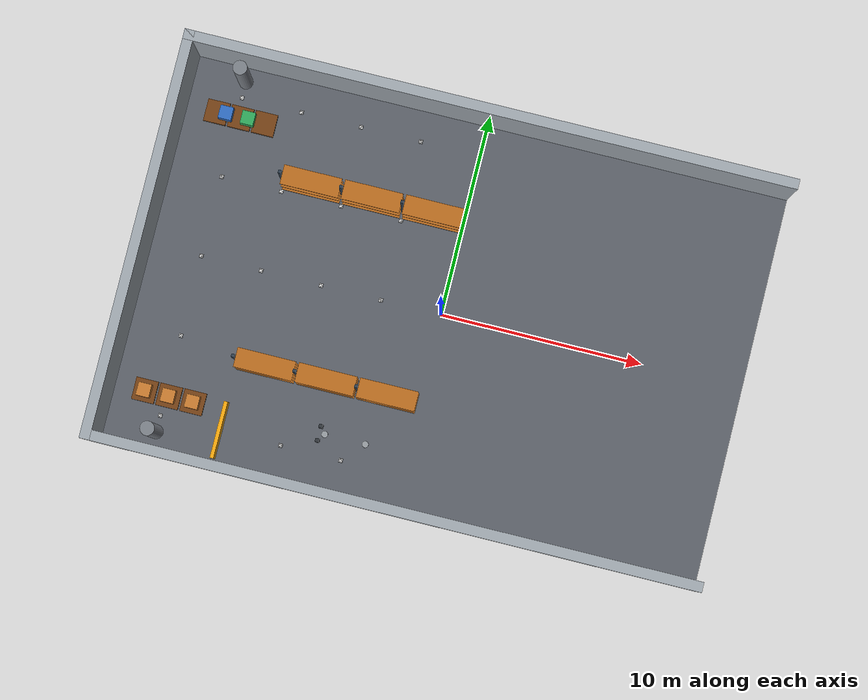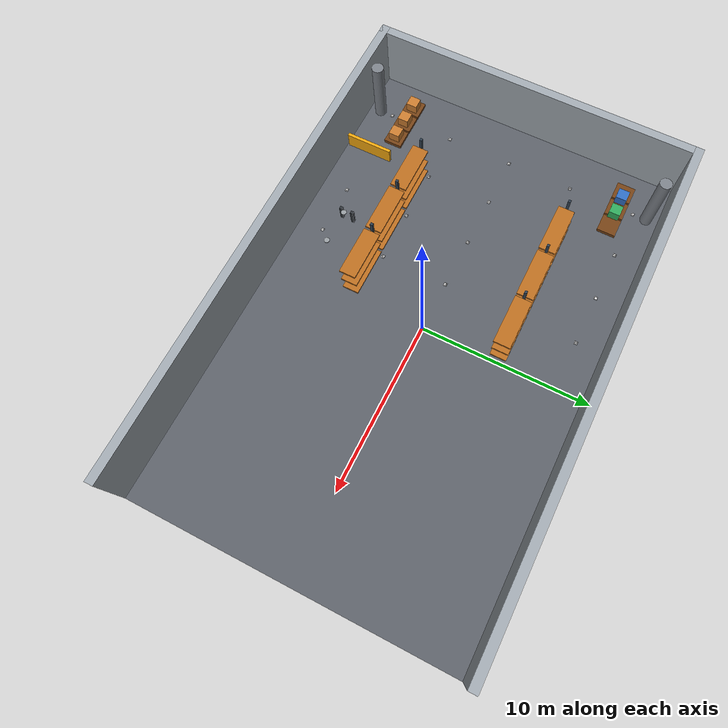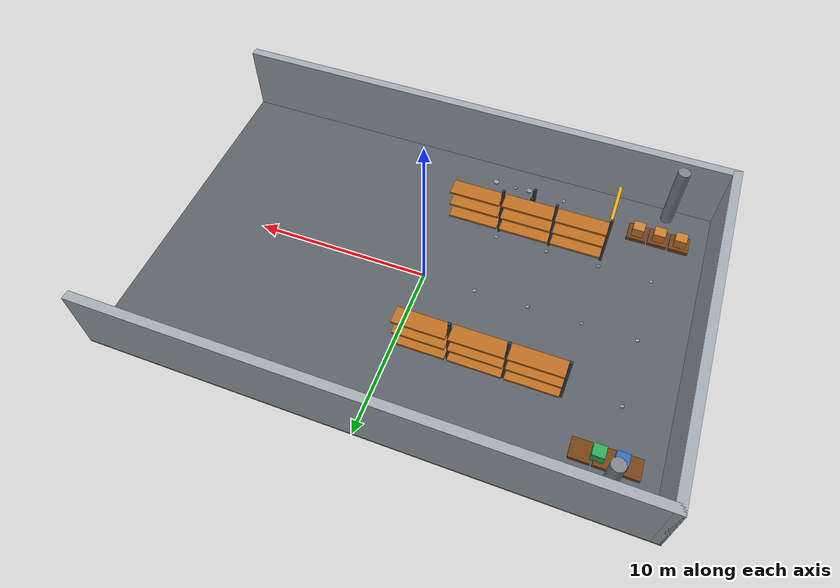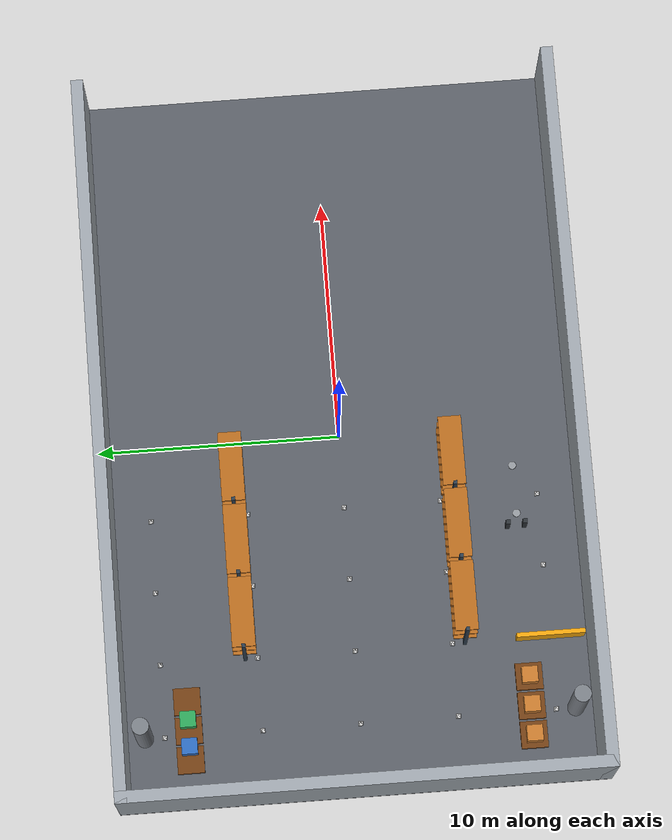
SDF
<sdf version="1.6">
 <world name="warehouse">
  <include><uri>model://sun</uri></include>
  <model name="floor">
   <static>true</static>
   <pose>0 0 -0.05 0 0 0</pose>
   <link name="link">
    <visual name="visual">
     <geometry><box><size>30 20 0.1</size></box></geometry>
     <material>
      <ambient>0.35 0.37 0.40 1</ambient>
      <diffuse>0.35 0.37 0.40 1</diffuse>
      <specular>0.1 0.1 0.1 1</specular>
     </material>
    </visual>
    <collision name="collision">
     <geometry><box><size>30 20 0.1</size></box></geometry>
     <surface>
      <friction><ode><mu>2.0</mu><mu2>2.0</mu2></ode></friction>
      <contact><ode><kp>1000000</kp><kd>100</kd><max_vel>0.05</max_vel><min_depth>0</min_depth></ode></contact>
     </surface>
    </collision>
   </link>
  </model>
  <model name="north_wall">
   <static>true</static>
   <pose>0 9.75 2 0 0 0</pose>
   <link name="link">
    <visual name="visual">
     <geometry><box><size>30 0.5 4</size></box></geometry>
     <material>
      <ambient>0.62 0.65 0.68 1</ambient>
      <diffuse>0.62 0.65 0.68 1</diffuse>
      <specular>0.1 0.1 0.1 1</specular>
     </material>
    </visual>
    <collision name="collision">
     <geometry><box><size>30 0.5 4</size></box></geometry>
     <surface>
      <friction><ode><mu>0.8</mu><mu2>0.8</mu2></ode></friction>
      <contact><ode><kp>1000000</kp><kd>100</kd><max_vel>0.05</max_vel><min_depth>0</min_depth></ode></contact>
     </surface>
    </collision>
   </link>
  </model>
  <model name="south_wall">
   <static>true</static>
   <pose>0 -9.75 2 0 0 0</pose>
   <link name="link">
    <visual name="visual">
     <geometry><box><size>30 0.5 4</size></box></geometry>
     <material>
      <ambient>0.62 0.65 0.68 1</ambient>
      <diffuse>0.62 0.65 0.68 1</diffuse>
      <specular>0.1 0.1 0.1 1</specular>
     </material>
    </visual>
    <collision name="collision">
     <geometry><box><size>30 0.5 4</size></box></geometry>
     <surface>
      <friction><ode><mu>0.8</mu><mu2>0.8</mu2></ode></friction>
      <contact><ode><kp>1000000</kp><kd>100</kd><max_vel>0.05</max_vel><min_depth>0</min_depth></ode></contact>
     </surface>
    </collision>
   </link>
  </model>
  <model name="west_wall">
   <static>true</static>
   <pose>-14.75 0 2 0 0 0</pose>
   <link name="link">
    <visual name="visual">
     <geometry><box><size>0.5 20 4</size></box></geometry>
     <material>
      <ambient>0.62 0.65 0.68 1</ambient>
      <diffuse>0.62 0.65 0.68 1</diffuse>
      <specular>0.1 0.1 0.1 1</specular>
     </material>
    </visual>
    <collision name="collision">
     <geometry><box><size>0.5 20 4</size></box></geometry>
     <surface>
      <friction><ode><mu>0.8</mu><mu2>0.8</mu2></ode></friction>
      <contact><ode><kp>1000000</kp><kd>100</kd><max_vel>0.05</max_vel><min_depth>0</min_depth></ode></contact>
     </surface>
    </collision>
   </link>
  </model>
  <model name="pillar_nw">
   <static>true</static>
   <pose>-12 8.8 2 0 0 0</pose>
   <link name="link">
    <visual name="visual">
     <geometry><cylinder><radius>0.35</radius><length>4</length></cylinder></geometry>
     <material>
      <ambient>0.48 0.50 0.53 1</ambient>
      <diffuse>0.48 0.50 0.53 1</diffuse>
      <specular>0.1 0.1 0.1 1</specular>
     </material>
    </visual>
    <collision name="collision">
     <geometry><cylinder><radius>0.35</radius><length>4</length></cylinder></geometry>
     <surface>
      <friction><ode><mu>0.8</mu><mu2>0.8</mu2></ode></friction>
      <contact><ode><kp>1000000</kp><kd>100</kd><max_vel>0.05</max_vel><min_depth>0</min_depth></ode></contact>
     </surface>
    </collision>
   </link>
  </model>
  <model name="pillar_sw">
   <static>true</static>
   <pose>-12 -8.8 2 0 0 0</pose>
   <link name="link">
    <visual name="visual">
     <geometry><cylinder><radius>0.35</radius><length>4</length></cylinder></geometry>
     <material>
      <ambient>0.48 0.50 0.53 1</ambient>
      <diffuse>0.48 0.50 0.53 1</diffuse>
      <specular>0.1 0.1 0.1 1</specular>
     </material>
    </visual>
    <collision name="collision">
     <geometry><cylinder><radius>0.35</radius><length>4</length></cylinder></geometry>
     <surface>
      <friction><ode><mu>0.8</mu><mu2>0.8</mu2></ode></friction>
      <contact><ode><kp>1000000</kp><kd>100</kd><max_vel>0.05</max_vel><min_depth>0</min_depth></ode></contact>
     </surface>
    </collision>
   </link>
  </model>
  <model name="rack_south_post_m9">
   <static>true</static>
   <pose>-9 -4.5 1.75 0 0 0</pose>
   <link name="link">
    <visual name="visual">
     <geometry><box><size>0.15 0.15 3.5</size></box></geometry>
     <material>
      <ambient>0.18 0.24 0.30 1</ambient>
      <diffuse>0.18 0.24 0.30 1</diffuse>
      <specular>0.1 0.1 0.1 1</specular>
     </material>
    </visual>
    <collision name="collision">
     <geometry><box><size>0.15 0.15 3.5</size></box></geometry>
     <surface>
      <friction><ode><mu>0.8</mu><mu2>0.8</mu2></ode></friction>
      <contact><ode><kp>1000000</kp><kd>100</kd><max_vel>0.05</max_vel><min_depth>0</min_depth></ode></contact>
     </surface>
    </collision>
   </link>
  </model>
  <model name="rack_south_post_m6">
   <static>true</static>
   <pose>-6 -4.5 1.75 0 0 0</pose>
   <link name="link">
    <visual name="visual">
     <geometry><box><size>0.15 0.15 3.5</size></box></geometry>
     <material>
      <ambient>0.18 0.24 0.30 1</ambient>
      <diffuse>0.18 0.24 0.30 1</diffuse>
      <specular>0.1 0.1 0.1 1</specular>
     </material>
    </visual>
    <collision name="collision">
     <geometry><box><size>0.15 0.15 3.5</size></box></geometry>
     <surface>
      <friction><ode><mu>0.8</mu><mu2>0.8</mu2></ode></friction>
      <contact><ode><kp>1000000</kp><kd>100</kd><max_vel>0.05</max_vel><min_depth>0</min_depth></ode></contact>
     </surface>
    </collision>
   </link>
  </model>
  <model name="rack_south_post_m3">
   <static>true</static>
   <pose>-3 -4.5 1.75 0 0 0</pose>
   <link name="link">
    <visual name="visual">
     <geometry><box><size>0.15 0.15 3.5</size></box></geometry>
     <material>
      <ambient>0.18 0.24 0.30 1</ambient>
      <diffuse>0.18 0.24 0.30 1</diffuse>
      <specular>0.1 0.1 0.1 1</specular>
     </material>
    </visual>
    <collision name="collision">
     <geometry><box><size>0.15 0.15 3.5</size></box></geometry>
     <surface>
      <friction><ode><mu>0.8</mu><mu2>0.8</mu2></ode></friction>
      <contact><ode><kp>1000000</kp><kd>100</kd><max_vel>0.05</max_vel><min_depth>0</min_depth></ode></contact>
     </surface>
    </collision>
   </link>
  </model>
  <model name="rack_south_shelf_m7.5_low">
   <static>true</static>
   <pose>-7.5 -4.5 0.7 0 0 0</pose>
   <link name="link">
    <visual name="visual">
     <geometry><box><size>2.85 0.95 0.12</size></box></geometry>
     <material>
      <ambient>0.72 0.42 0.12 1</ambient>
      <diffuse>0.72 0.42 0.12 1</diffuse>
      <specular>0.1 0.1 0.1 1</specular>
     </material>
    </visual>
    <collision name="collision">
     <geometry><box><size>2.85 0.95 0.12</size></box></geometry>
     <surface>
      <friction><ode><mu>0.8</mu><mu2>0.8</mu2></ode></friction>
      <contact><ode><kp>1000000</kp><kd>100</kd><max_vel>0.05</max_vel><min_depth>0</min_depth></ode></contact>
     </surface>
    </collision>
   </link>
  </model>
  <model name="rack_south_shelf_m7.5_mid">
   <static>true</static>
   <pose>-7.5 -4.5 1.7 0 0 0</pose>
   <link name="link">
    <visual name="visual">
     <geometry><box><size>2.85 0.95 0.12</size></box></geometry>
     <material>
      <ambient>0.72 0.42 0.12 1</ambient>
      <diffuse>0.72 0.42 0.12 1</diffuse>
      <specular>0.1 0.1 0.1 1</specular>
     </material>
    </visual>
    <collision name="collision">
     <geometry><box><size>2.85 0.95 0.12</size></box></geometry>
     <surface>
      <friction><ode><mu>0.8</mu><mu2>0.8</mu2></ode></friction>
      <contact><ode><kp>1000000</kp><kd>100</kd><max_vel>0.05</max_vel><min_depth>0</min_depth></ode></contact>
     </surface>
    </collision>
   </link>
  </model>
  <model name="rack_south_shelf_m7.5_high">
   <static>true</static>
   <pose>-7.5 -4.5 2.7 0 0 0</pose>
   <link name="link">
    <visual name="visual">
     <geometry><box><size>2.85 0.95 0.12</size></box></geometry>
     <material>
      <ambient>0.72 0.42 0.12 1</ambient>
      <diffuse>0.72 0.42 0.12 1</diffuse>
      <specular>0.1 0.1 0.1 1</specular>
     </material>
    </visual>
    <collision name="collision">
     <geometry><box><size>2.85 0.95 0.12</size></box></geometry>
     <surface>
      <friction><ode><mu>0.8</mu><mu2>0.8</mu2></ode></friction>
      <contact><ode><kp>1000000</kp><kd>100</kd><max_vel>0.05</max_vel><min_depth>0</min_depth></ode></contact>
     </surface>
    </collision>
   </link>
  </model>
  <model name="rack_south_shelf_m4.5_low">
   <static>true</static>
   <pose>-4.5 -4.5 0.7 0 0 0</pose>
   <link name="link">
    <visual name="visual">
     <geometry><box><size>2.85 0.95 0.12</size></box></geometry>
     <material>
      <ambient>0.72 0.42 0.12 1</ambient>
      <diffuse>0.72 0.42 0.12 1</diffuse>
      <specular>0.1 0.1 0.1 1</specular>
     </material>
    </visual>
    <collision name="collision">
     <geometry><box><size>2.85 0.95 0.12</size></box></geometry>
     <surface>
      <friction><ode><mu>0.8</mu><mu2>0.8</mu2></ode></friction>
      <contact><ode><kp>1000000</kp><kd>100</kd><max_vel>0.05</max_vel><min_depth>0</min_depth></ode></contact>
     </surface>
    </collision>
   </link>
  </model>
  <model name="rack_south_shelf_m4.5_mid">
   <static>true</static>
   <pose>-4.5 -4.5 1.7 0 0 0</pose>
   <link name="link">
    <visual name="visual">
     <geometry><box><size>2.85 0.95 0.12</size></box></geometry>
     <material>
      <ambient>0.72 0.42 0.12 1</ambient>
      <diffuse>0.72 0.42 0.12 1</diffuse>
      <specular>0.1 0.1 0.1 1</specular>
     </material>
    </visual>
    <collision name="collision">
     <geometry><box><size>2.85 0.95 0.12</size></box></geometry>
     <surface>
      <friction><ode><mu>0.8</mu><mu2>0.8</mu2></ode></friction>
      <contact><ode><kp>1000000</kp><kd>100</kd><max_vel>0.05</max_vel><min_depth>0</min_depth></ode></contact>
     </surface>
    </collision>
   </link>
  </model>
  <model name="rack_south_shelf_m4.5_high">
   <static>true</static>
   <pose>-4.5 -4.5 2.7 0 0 0</pose>
   <link name="link">
    <visual name="visual">
     <geometry><box><size>2.85 0.95 0.12</size></box></geometry>
     <material>
      <ambient>0.72 0.42 0.12 1</ambient>
      <diffuse>0.72 0.42 0.12 1</diffuse>
      <specular>0.1 0.1 0.1 1</specular>
     </material>
    </visual>
    <collision name="collision">
     <geometry><box><size>2.85 0.95 0.12</size></box></geometry>
     <surface>
      <friction><ode><mu>0.8</mu><mu2>0.8</mu2></ode></friction>
      <contact><ode><kp>1000000</kp><kd>100</kd><max_vel>0.05</max_vel><min_depth>0</min_depth></ode></contact>
     </surface>
    </collision>
   </link>
  </model>
  <model name="rack_south_shelf_m1.5_low">
   <static>true</static>
   <pose>-1.5 -4.5 0.7 0 0 0</pose>
   <link name="link">
    <visual name="visual">
     <geometry><box><size>2.85 0.95 0.12</size></box></geometry>
     <material>
      <ambient>0.72 0.42 0.12 1</ambient>
      <diffuse>0.72 0.42 0.12 1</diffuse>
      <specular>0.1 0.1 0.1 1</specular>
     </material>
    </visual>
    <collision name="collision">
     <geometry><box><size>2.85 0.95 0.12</size></box></geometry>
     <surface>
      <friction><ode><mu>0.8</mu><mu2>0.8</mu2></ode></friction>
      <contact><ode><kp>1000000</kp><kd>100</kd><max_vel>0.05</max_vel><min_depth>0</min_depth></ode></contact>
     </surface>
    </collision>
   </link>
  </model>
  <model name="rack_south_shelf_m1.5_mid">
   <static>true</static>
   <pose>-1.5 -4.5 1.7 0 0 0</pose>
   <link name="link">
    <visual name="visual">
     <geometry><box><size>2.85 0.95 0.12</size></box></geometry>
     <material>
      <ambient>0.72 0.42 0.12 1</ambient>
      <diffuse>0.72 0.42 0.12 1</diffuse>
      <specular>0.1 0.1 0.1 1</specular>
     </material>
    </visual>
    <collision name="collision">
     <geometry><box><size>2.85 0.95 0.12</size></box></geometry>
     <surface>
      <friction><ode><mu>0.8</mu><mu2>0.8</mu2></ode></friction>
      <contact><ode><kp>1000000</kp><kd>100</kd><max_vel>0.05</max_vel><min_depth>0</min_depth></ode></contact>
     </surface>
    </collision>
   </link>
  </model>
  <model name="rack_south_shelf_m1.5_high">
   <static>true</static>
   <pose>-1.5 -4.5 2.7 0 0 0</pose>
   <link name="link">
    <visual name="visual">
     <geometry><box><size>2.85 0.95 0.12</size></box></geometry>
     <material>
      <ambient>0.72 0.42 0.12 1</ambient>
      <diffuse>0.72 0.42 0.12 1</diffuse>
      <specular>0.1 0.1 0.1 1</specular>
     </material>
    </visual>
    <collision name="collision">
     <geometry><box><size>2.85 0.95 0.12</size></box></geometry>
     <surface>
      <friction><ode><mu>0.8</mu><mu2>0.8</mu2></ode></friction>
      <contact><ode><kp>1000000</kp><kd>100</kd><max_vel>0.05</max_vel><min_depth>0</min_depth></ode></contact>
     </surface>
    </collision>
   </link>
  </model>
  <model name="rack_north_post_m9">
   <static>true</static>
   <pose>-9 4.5 1.75 0 0 0</pose>
   <link name="link">
    <visual name="visual">
     <geometry><box><size>0.15 0.15 3.5</size></box></geometry>
     <material>
      <ambient>0.18 0.24 0.30 1</ambient>
      <diffuse>0.18 0.24 0.30 1</diffuse>
      <specular>0.1 0.1 0.1 1</specular>
     </material>
    </visual>
    <collision name="collision">
     <geometry><box><size>0.15 0.15 3.5</size></box></geometry>
     <surface>
      <friction><ode><mu>0.8</mu><mu2>0.8</mu2></ode></friction>
      <contact><ode><kp>1000000</kp><kd>100</kd><max_vel>0.05</max_vel><min_depth>0</min_depth></ode></contact>
     </surface>
    </collision>
   </link>
  </model>
  <model name="rack_north_post_m6">
   <static>true</static>
   <pose>-6 4.5 1.75 0 0 0</pose>
   <link name="link">
    <visual name="visual">
     <geometry><box><size>0.15 0.15 3.5</size></box></geometry>
     <material>
      <ambient>0.18 0.24 0.30 1</ambient>
      <diffuse>0.18 0.24 0.30 1</diffuse>
      <specular>0.1 0.1 0.1 1</specular>
     </material>
    </visual>
    <collision name="collision">
     <geometry><box><size>0.15 0.15 3.5</size></box></geometry>
     <surface>
      <friction><ode><mu>0.8</mu><mu2>0.8</mu2></ode></friction>
      <contact><ode><kp>1000000</kp><kd>100</kd><max_vel>0.05</max_vel><min_depth>0</min_depth></ode></contact>
     </surface>
    </collision>
   </link>
  </model>
  <model name="rack_north_post_m3">
   <static>true</static>
   <pose>-3 4.5 1.75 0 0 0</pose>
   <link name="link">
    <visual name="visual">
     <geometry><box><size>0.15 0.15 3.5</size></box></geometry>
     <material>
      <ambient>0.18 0.24 0.30 1</ambient>
      <diffuse>0.18 0.24 0.30 1</diffuse>
      <specular>0.1 0.1 0.1 1</specular>
     </material>
    </visual>
    <collision name="collision">
     <geometry><box><size>0.15 0.15 3.5</size></box></geometry>
     <surface>
      <friction><ode><mu>0.8</mu><mu2>0.8</mu2></ode></friction>
      <contact><ode><kp>1000000</kp><kd>100</kd><max_vel>0.05</max_vel><min_depth>0</min_depth></ode></contact>
     </surface>
    </collision>
   </link>
  </model>
  <model name="rack_north_shelf_m7.5_low">
   <static>true</static>
   <pose>-7.5 4.5 0.7 0 0 0</pose>
   <link name="link">
    <visual name="visual">
     <geometry><box><size>2.85 0.95 0.12</size></box></geometry>
     <material>
      <ambient>0.72 0.42 0.12 1</ambient>
      <diffuse>0.72 0.42 0.12 1</diffuse>
      <specular>0.1 0.1 0.1 1</specular>
     </material>
    </visual>
    <collision name="collision">
     <geometry><box><size>2.85 0.95 0.12</size></box></geometry>
     <surface>
      <friction><ode><mu>0.8</mu><mu2>0.8</mu2></ode></friction>
      <contact><ode><kp>1000000</kp><kd>100</kd><max_vel>0.05</max_vel><min_depth>0</min_depth></ode></contact>
     </surface>
    </collision>
   </link>
  </model>
  <model name="rack_north_shelf_m7.5_mid">
   <static>true</static>
   <pose>-7.5 4.5 1.7 0 0 0</pose>
   <link name="link">
    <visual name="visual">
     <geometry><box><size>2.85 0.95 0.12</size></box></geometry>
     <material>
      <ambient>0.72 0.42 0.12 1</ambient>
      <diffuse>0.72 0.42 0.12 1</diffuse>
      <specular>0.1 0.1 0.1 1</specular>
     </material>
    </visual>
    <collision name="collision">
     <geometry><box><size>2.85 0.95 0.12</size></box></geometry>
     <surface>
      <friction><ode><mu>0.8</mu><mu2>0.8</mu2></ode></friction>
      <contact><ode><kp>1000000</kp><kd>100</kd><max_vel>0.05</max_vel><min_depth>0</min_depth></ode></contact>
     </surface>
    </collision>
   </link>
  </model>
  <model name="rack_north_shelf_m7.5_high">
   <static>true</static>
   <pose>-7.5 4.5 2.7 0 0 0</pose>
   <link name="link">
    <visual name="visual">
     <geometry><box><size>2.85 0.95 0.12</size></box></geometry>
     <material>
      <ambient>0.72 0.42 0.12 1</ambient>
      <diffuse>0.72 0.42 0.12 1</diffuse>
      <specular>0.1 0.1 0.1 1</specular>
     </material>
    </visual>
    <collision name="collision">
     <geometry><box><size>2.85 0.95 0.12</size></box></geometry>
     <surface>
      <friction><ode><mu>0.8</mu><mu2>0.8</mu2></ode></friction>
      <contact><ode><kp>1000000</kp><kd>100</kd><max_vel>0.05</max_vel><min_depth>0</min_depth></ode></contact>
     </surface>
    </collision>
   </link>
  </model>
  <model name="rack_north_shelf_m4.5_low">
   <static>true</static>
   <pose>-4.5 4.5 0.7 0 0 0</pose>
   <link name="link">
    <visual name="visual">
     <geometry><box><size>2.85 0.95 0.12</size></box></geometry>
     <material>
      <ambient>0.72 0.42 0.12 1</ambient>
      <diffuse>0.72 0.42 0.12 1</diffuse>
      <specular>0.1 0.1 0.1 1</specular>
     </material>
    </visual>
    <collision name="collision">
     <geometry><box><size>2.85 0.95 0.12</size></box></geometry>
     <surface>
      <friction><ode><mu>0.8</mu><mu2>0.8</mu2></ode></friction>
      <contact><ode><kp>1000000</kp><kd>100</kd><max_vel>0.05</max_vel><min_depth>0</min_depth></ode></contact>
     </surface>
    </collision>
   </link>
  </model>
  <model name="rack_north_shelf_m4.5_mid">
   <static>true</static>
   <pose>-4.5 4.5 1.7 0 0 0</pose>
   <link name="link">
    <visual name="visual">
     <geometry><box><size>2.85 0.95 0.12</size></box></geometry>
     <material>
      <ambient>0.72 0.42 0.12 1</ambient>
      <diffuse>0.72 0.42 0.12 1</diffuse>
      <specular>0.1 0.1 0.1 1</specular>
     </material>
    </visual>
    <collision name="collision">
     <geometry><box><size>2.85 0.95 0.12</size></box></geometry>
     <surface>
      <friction><ode><mu>0.8</mu><mu2>0.8</mu2></ode></friction>
      <contact><ode><kp>1000000</kp><kd>100</kd><max_vel>0.05</max_vel><min_depth>0</min_depth></ode></contact>
     </surface>
    </collision>
   </link>
  </model>
  <model name="rack_north_shelf_m4.5_high">
   <static>true</static>
   <pose>-4.5 4.5 2.7 0 0 0</pose>
   <link name="link">
    <visual name="visual">
     <geometry><box><size>2.85 0.95 0.12</size></box></geometry>
     <material>
      <ambient>0.72 0.42 0.12 1</ambient>
      <diffuse>0.72 0.42 0.12 1</diffuse>
      <specular>0.1 0.1 0.1 1</specular>
     </material>
    </visual>
    <collision name="collision">
     <geometry><box><size>2.85 0.95 0.12</size></box></geometry>
     <surface>
      <friction><ode><mu>0.8</mu><mu2>0.8</mu2></ode></friction>
      <contact><ode><kp>1000000</kp><kd>100</kd><max_vel>0.05</max_vel><min_depth>0</min_depth></ode></contact>
     </surface>
    </collision>
   </link>
  </model>
  <model name="rack_north_shelf_m1.5_low">
   <static>true</static>
   <pose>-1.5 4.5 0.7 0 0 0</pose>
   <link name="link">
    <visual name="visual">
     <geometry><box><size>2.85 0.95 0.12</size></box></geometry>
     <material>
      <ambient>0.72 0.42 0.12 1</ambient>
      <diffuse>0.72 0.42 0.12 1</diffuse>
      <specular>0.1 0.1 0.1 1</specular>
     </material>
    </visual>
    <collision name="collision">
     <geometry><box><size>2.85 0.95 0.12</size></box></geometry>
     <surface>
      <friction><ode><mu>0.8</mu><mu2>0.8</mu2></ode></friction>
      <contact><ode><kp>1000000</kp><kd>100</kd><max_vel>0.05</max_vel><min_depth>0</min_depth></ode></contact>
     </surface>
    </collision>
   </link>
  </model>
  <model name="rack_north_shelf_m1.5_mid">
   <static>true</static>
   <pose>-1.5 4.5 1.7 0 0 0</pose>
   <link name="link">
    <visual name="visual">
     <geometry><box><size>2.85 0.95 0.12</size></box></geometry>
     <material>
      <ambient>0.72 0.42 0.12 1</ambient>
      <diffuse>0.72 0.42 0.12 1</diffuse>
      <specular>0.1 0.1 0.1 1</specular>
     </material>
    </visual>
    <collision name="collision">
     <geometry><box><size>2.85 0.95 0.12</size></box></geometry>
     <surface>
      <friction><ode><mu>0.8</mu><mu2>0.8</mu2></ode></friction>
      <contact><ode><kp>1000000</kp><kd>100</kd><max_vel>0.05</max_vel><min_depth>0</min_depth></ode></contact>
     </surface>
    </collision>
   </link>
  </model>
  <model name="rack_north_shelf_m1.5_high">
   <static>true</static>
   <pose>-1.5 4.5 2.7 0 0 0</pose>
   <link name="link">
    <visual name="visual">
     <geometry><box><size>2.85 0.95 0.12</size></box></geometry>
     <material>
      <ambient>0.72 0.42 0.12 1</ambient>
      <diffuse>0.72 0.42 0.12 1</diffuse>
      <specular>0.1 0.1 0.1 1</specular>
     </material>
    </visual>
    <collision name="collision">
     <geometry><box><size>2.85 0.95 0.12</size></box></geometry>
     <surface>
      <friction><ode><mu>0.8</mu><mu2>0.8</mu2></ode></friction>
      <contact><ode><kp>1000000</kp><kd>100</kd><max_vel>0.05</max_vel><min_depth>0</min_depth></ode></contact>
     </surface>
    </collision>
   </link>
  </model>
  <model name="inbound_pallet_-13">
   <static>true</static>
   <pose>-13 -7 0.11 0 0 0</pose>
   <link name="link">
    <visual name="visual">
     <geometry><box><size>1.1 1.1 0.22</size></box></geometry>
     <material>
      <ambient>0.45 0.25 0.08 1</ambient>
      <diffuse>0.45 0.25 0.08 1</diffuse>
      <specular>0.1 0.1 0.1 1</specular>
     </material>
    </visual>
    <collision name="collision">
     <geometry><box><size>1.1 1.1 0.22</size></box></geometry>
     <surface>
      <friction><ode><mu>0.7</mu><mu2>0.7</mu2></ode></friction>
      <contact><ode><kp>1000000</kp><kd>100</kd><max_vel>0.05</max_vel><min_depth>0</min_depth></ode></contact>
     </surface>
    </collision>
   </link>
  </model>
  <model name="inbound_pallet_-11.8">
   <static>true</static>
   <pose>-11.8 -7 0.11 0 0 0</pose>
   <link name="link">
    <visual name="visual">
     <geometry><box><size>1.1 1.1 0.22</size></box></geometry>
     <material>
      <ambient>0.45 0.25 0.08 1</ambient>
      <diffuse>0.45 0.25 0.08 1</diffuse>
      <specular>0.1 0.1 0.1 1</specular>
     </material>
    </visual>
    <collision name="collision">
     <geometry><box><size>1.1 1.1 0.22</size></box></geometry>
     <surface>
      <friction><ode><mu>0.7</mu><mu2>0.7</mu2></ode></friction>
      <contact><ode><kp>1000000</kp><kd>100</kd><max_vel>0.05</max_vel><min_depth>0</min_depth></ode></contact>
     </surface>
    </collision>
   </link>
  </model>
  <model name="inbound_pallet_-10.6">
   <static>true</static>
   <pose>-10.6 -7 0.11 0 0 0</pose>
   <link name="link">
    <visual name="visual">
     <geometry><box><size>1.1 1.1 0.22</size></box></geometry>
     <material>
      <ambient>0.45 0.25 0.08 1</ambient>
      <diffuse>0.45 0.25 0.08 1</diffuse>
      <specular>0.1 0.1 0.1 1</specular>
     </material>
    </visual>
    <collision name="collision">
     <geometry><box><size>1.1 1.1 0.22</size></box></geometry>
     <surface>
      <friction><ode><mu>0.7</mu><mu2>0.7</mu2></ode></friction>
      <contact><ode><kp>1000000</kp><kd>100</kd><max_vel>0.05</max_vel><min_depth>0</min_depth></ode></contact>
     </surface>
    </collision>
   </link>
  </model>
  <model name="inbound_box_-13">
   <static>true</static>
   <pose>-13 -7 0.48 0 0 0</pose>
   <link name="link">
    <visual name="visual">
     <geometry><box><size>0.65 0.65 0.65</size></box></geometry>
     <material>
      <ambient>0.78 0.48 0.18 1</ambient>
      <diffuse>0.78 0.48 0.18 1</diffuse>
      <specular>0.1 0.1 0.1 1</specular>
     </material>
    </visual>
    <collision name="collision">
     <geometry><box><size>0.65 0.65 0.65</size></box></geometry>
     <surface>
      <friction><ode><mu>0.7</mu><mu2>0.7</mu2></ode></friction>
      <contact><ode><kp>1000000</kp><kd>100</kd><max_vel>0.05</max_vel><min_depth>0</min_depth></ode></contact>
     </surface>
    </collision>
   </link>
  </model>
  <model name="inbound_box_-11.8">
   <static>true</static>
   <pose>-11.8 -7 0.48 0 0 0</pose>
   <link name="link">
    <visual name="visual">
     <geometry><box><size>0.65 0.65 0.65</size></box></geometry>
     <material>
      <ambient>0.78 0.48 0.18 1</ambient>
      <diffuse>0.78 0.48 0.18 1</diffuse>
      <specular>0.1 0.1 0.1 1</specular>
     </material>
    </visual>
    <collision name="collision">
     <geometry><box><size>0.65 0.65 0.65</size></box></geometry>
     <surface>
      <friction><ode><mu>0.7</mu><mu2>0.7</mu2></ode></friction>
      <contact><ode><kp>1000000</kp><kd>100</kd><max_vel>0.05</max_vel><min_depth>0</min_depth></ode></contact>
     </surface>
    </collision>
   </link>
  </model>
  <model name="inbound_box_-10.6">
   <static>true</static>
   <pose>-10.6 -7 0.48 0 0 0</pose>
   <link name="link">
    <visual name="visual">
     <geometry><box><size>0.65 0.65 0.65</size></box></geometry>
     <material>
      <ambient>0.78 0.48 0.18 1</ambient>
      <diffuse>0.78 0.48 0.18 1</diffuse>
      <specular>0.1 0.1 0.1 1</specular>
     </material>
    </visual>
    <collision name="collision">
     <geometry><box><size>0.65 0.65 0.65</size></box></geometry>
     <surface>
      <friction><ode><mu>0.7</mu><mu2>0.7</mu2></ode></friction>
      <contact><ode><kp>1000000</kp><kd>100</kd><max_vel>0.05</max_vel><min_depth>0</min_depth></ode></contact>
     </surface>
    </collision>
   </link>
  </model>
  <model name="outbound_pallet_-13">
   <static>true</static>
   <pose>-13 7 0.11 0 0 0</pose>
   <link name="link">
    <visual name="visual">
     <geometry><box><size>1.1 1.1 0.22</size></box></geometry>
     <material>
      <ambient>0.45 0.25 0.08 1</ambient>
      <diffuse>0.45 0.25 0.08 1</diffuse>
      <specular>0.1 0.1 0.1 1</specular>
     </material>
    </visual>
    <collision name="collision">
     <geometry><box><size>1.1 1.1 0.22</size></box></geometry>
     <surface>
      <friction><ode><mu>0.7</mu><mu2>0.7</mu2></ode></friction>
      <contact><ode><kp>1000000</kp><kd>100</kd><max_vel>0.05</max_vel><min_depth>0</min_depth></ode></contact>
     </surface>
    </collision>
   </link>
  </model>
  <model name="outbound_pallet_-11.8">
   <static>true</static>
   <pose>-11.8 7 0.11 0 0 0</pose>
   <link name="link">
    <visual name="visual">
     <geometry><box><size>1.1 1.1 0.22</size></box></geometry>
     <material>
      <ambient>0.45 0.25 0.08 1</ambient>
      <diffuse>0.45 0.25 0.08 1</diffuse>
      <specular>0.1 0.1 0.1 1</specular>
     </material>
    </visual>
    <collision name="collision">
     <geometry><box><size>1.1 1.1 0.22</size></box></geometry>
     <surface>
      <friction><ode><mu>0.7</mu><mu2>0.7</mu2></ode></friction>
      <contact><ode><kp>1000000</kp><kd>100</kd><max_vel>0.05</max_vel><min_depth>0</min_depth></ode></contact>
     </surface>
    </collision>
   </link>
  </model>
  <model name="outbound_pallet_-10.6">
   <static>true</static>
   <pose>-10.6 7 0.11 0 0 0</pose>
   <link name="link">
    <visual name="visual">
     <geometry><box><size>1.1 1.1 0.22</size></box></geometry>
     <material>
      <ambient>0.45 0.25 0.08 1</ambient>
      <diffuse>0.45 0.25 0.08 1</diffuse>
      <specular>0.1 0.1 0.1 1</specular>
     </material>
    </visual>
    <collision name="collision">
     <geometry><box><size>1.1 1.1 0.22</size></box></geometry>
     <surface>
      <friction><ode><mu>0.7</mu><mu2>0.7</mu2></ode></friction>
      <contact><ode><kp>1000000</kp><kd>100</kd><max_vel>0.05</max_vel><min_depth>0</min_depth></ode></contact>
     </surface>
    </collision>
   </link>
  </model>
  <model name="outbound_box_a">
   <static>true</static>
   <pose>-12.5 7 0.48 0 0 0</pose>
   <link name="link">
    <visual name="visual">
     <geometry><box><size>0.65 0.65 0.65</size></box></geometry>
     <material>
      <ambient>0.18 0.42 0.75 1</ambient>
      <diffuse>0.18 0.42 0.75 1</diffuse>
      <specular>0.1 0.1 0.1 1</specular>
     </material>
    </visual>
    <collision name="collision">
     <geometry><box><size>0.65 0.65 0.65</size></box></geometry>
     <surface>
      <friction><ode><mu>0.7</mu><mu2>0.7</mu2></ode></friction>
      <contact><ode><kp>1000000</kp><kd>100</kd><max_vel>0.05</max_vel><min_depth>0</min_depth></ode></contact>
     </surface>
    </collision>
   </link>
  </model>
  <model name="outbound_box_b">
   <static>true</static>
   <pose>-11.4 7 0.48 0 0 0</pose>
   <link name="link">
    <visual name="visual">
     <geometry><box><size>0.65 0.65 0.65</size></box></geometry>
     <material>
      <ambient>0.18 0.65 0.35 1</ambient>
      <diffuse>0.18 0.65 0.35 1</diffuse>
      <specular>0.1 0.1 0.1 1</specular>
     </material>
    </visual>
    <collision name="collision">
     <geometry><box><size>0.65 0.65 0.65</size></box></geometry>
     <surface>
      <friction><ode><mu>0.7</mu><mu2>0.7</mu2></ode></friction>
      <contact><ode><kp>1000000</kp><kd>100</kd><max_vel>0.05</max_vel><min_depth>0</min_depth></ode></contact>
     </surface>
    </collision>
   </link>
  </model>
  <model name="conveyor_roller_-4">
   <static>true</static>
   <pose>-4 -7 1.22 0 0 0</pose>
   <link name="link">
    <visual name="visual">
     <geometry><cylinder><radius>0.16</radius><length>0.05</length></cylinder></geometry>
     <material>
      <ambient>0.58 0.60 0.62 1</ambient>
      <diffuse>0.58 0.60 0.62 1</diffuse>
      <specular>0.1 0.1 0.1 1</specular>
     </material>
    </visual>
    <collision name="collision">
     <geometry><cylinder><radius>0.16</radius><length>0.05</length></cylinder></geometry>
     <surface>
      <friction><ode><mu>0.7</mu><mu2>0.7</mu2></ode></friction>
      <contact><ode><kp>1000000</kp><kd>100</kd><max_vel>0.05</max_vel><min_depth>0</min_depth></ode></contact>
     </surface>
    </collision>
   </link>
  </model>
  <model name="conveyor_roller_-2">
   <static>true</static>
   <pose>-2 -7 1.22 0 0 0</pose>
   <link name="link">
    <visual name="visual">
     <geometry><cylinder><radius>0.16</radius><length>0.05</length></cylinder></geometry>
     <material>
      <ambient>0.58 0.60 0.62 1</ambient>
      <diffuse>0.58 0.60 0.62 1</diffuse>
      <specular>0.1 0.1 0.1 1</specular>
     </material>
    </visual>
    <collision name="collision">
     <geometry><cylinder><radius>0.16</radius><length>0.05</length></cylinder></geometry>
     <surface>
      <friction><ode><mu>0.7</mu><mu2>0.7</mu2></ode></friction>
      <contact><ode><kp>1000000</kp><kd>100</kd><max_vel>0.05</max_vel><min_depth>0</min_depth></ode></contact>
     </surface>
    </collision>
   </link>
  </model>
  <model name="conveyor_leg_-4.3_-7.35">
   <static>true</static>
   <pose>-4.3 -7.35 0.52 0 0 0</pose>
   <link name="link">
    <visual name="visual">
     <geometry><box><size>0.18 0.18 1</size></box></geometry>
     <material>
      <ambient>0.18 0.20 0.22 1</ambient>
      <diffuse>0.18 0.20 0.22 1</diffuse>
      <specular>0.1 0.1 0.1 1</specular>
     </material>
    </visual>
    <collision name="collision">
     <geometry><box><size>0.18 0.18 1</size></box></geometry>
     <surface>
      <friction><ode><mu>0.7</mu><mu2>0.7</mu2></ode></friction>
      <contact><ode><kp>1000000</kp><kd>100</kd><max_vel>0.05</max_vel><min_depth>0</min_depth></ode></contact>
     </surface>
    </collision>
   </link>
  </model>
  <model name="conveyor_leg_-4.3_-6.65">
   <static>true</static>
   <pose>-4.3 -6.65 0.52 0 0 0</pose>
   <link name="link">
    <visual name="visual">
     <geometry><box><size>0.18 0.18 1</size></box></geometry>
     <material>
      <ambient>0.18 0.20 0.22 1</ambient>
      <diffuse>0.18 0.20 0.22 1</diffuse>
      <specular>0.1 0.1 0.1 1</specular>
     </material>
    </visual>
    <collision name="collision">
     <geometry><box><size>0.18 0.18 1</size></box></geometry>
     <surface>
      <friction><ode><mu>0.7</mu><mu2>0.7</mu2></ode></friction>
      <contact><ode><kp>1000000</kp><kd>100</kd><max_vel>0.05</max_vel><min_depth>0</min_depth></ode></contact>
     </surface>
    </collision>
   </link>
  </model>
  <model name="inbound_guardrail">
   <static>true</static>
   <pose>-9 -8 0.5 0 0 0</pose>
   <link name="link">
    <visual name="visual">
     <geometry><box><size>0.18 2.8 1</size></box></geometry>
     <material>
      <ambient>0.95 0.65 0.05 1</ambient>
      <diffuse>0.95 0.65 0.05 1</diffuse>
      <specular>0.1 0.1 0.1 1</specular>
     </material>
    </visual>
    <collision name="collision">
     <geometry><box><size>0.18 2.8 1</size></box></geometry>
     <surface>
      <friction><ode><mu>0.7</mu><mu2>0.7</mu2></ode></friction>
      <contact><ode><kp>1000000</kp><kd>100</kd><max_vel>0.05</max_vel><min_depth>0</min_depth></ode></contact>
     </surface>
    </collision>
   </link>
  </model>
  <include><uri>model://datamatrix_marker</uri><name>datamatrix_101</name><pose>-12 -8 0 0 0 0</pose></include>
  <include><uri>model://datamatrix_marker</uri><name>datamatrix_102</name><pose>-9 -8 0 0 0 0</pose></include>
  <include><uri>model://datamatrix_marker</uri><name>datamatrix_103</name><pose>-6 -8 0 0 0 0</pose></include>
  <include><uri>model://datamatrix_marker</uri><name>datamatrix_104</name><pose>-3 -8 0 0 0 0</pose></include>
  <include><uri>model://datamatrix_marker</uri><name>datamatrix_201</name><pose>-12 -4 0 0 0 0</pose></include>
  <include><uri>model://datamatrix_marker</uri><name>datamatrix_202</name><pose>-9 -4 0 0 0 0</pose></include>
  <include><uri>model://datamatrix_marker</uri><name>datamatrix_203</name><pose>-6 -4 0 0 0 0</pose></include>
  <include><uri>model://datamatrix_marker</uri><name>datamatrix_204</name><pose>-3 -4 0 0 0 0</pose></include>
  <include><uri>model://datamatrix_marker</uri><name>datamatrix_301</name><pose>-12 0 0 0 0 0</pose></include>
  <include><uri>model://datamatrix_marker</uri><name>datamatrix_302</name><pose>-9 0 0 0 0 0</pose></include>
  <include><uri>model://datamatrix_marker</uri><name>datamatrix_303</name><pose>-6 0 0 0 0 0</pose></include>
  <include><uri>model://datamatrix_marker</uri><name>datamatrix_304</name><pose>-3 0 0 0 0 0</pose></include>
  <include><uri>model://datamatrix_marker</uri><name>datamatrix_401</name><pose>-12 4 0 0 0 0</pose></include>
  <include><uri>model://datamatrix_marker</uri><name>datamatrix_402</name><pose>-9 4 0 0 0 0</pose></include>
  <include><uri>model://datamatrix_marker</uri><name>datamatrix_403</name><pose>-6 4 0 0 0 0</pose></include>
  <include><uri>model://datamatrix_marker</uri><name>datamatrix_404</name><pose>-3 4 0 0 0 0</pose></include>
  <include><uri>model://datamatrix_marker</uri><name>datamatrix_501</name><pose>-12 8 0 0 0 0</pose></include>
  <include><uri>model://datamatrix_marker</uri><name>datamatrix_502</name><pose>-9 8 0 0 0 0</pose></include>
  <include><uri>model://datamatrix_marker</uri><name>datamatrix_503</name><pose>-6 8 0 0 0 0</pose></include>
  <include><uri>model://datamatrix_marker</uri><name>datamatrix_504</name><pose>-3 8 0 0 0 0</pose></include>
 </world>
</sdf>
